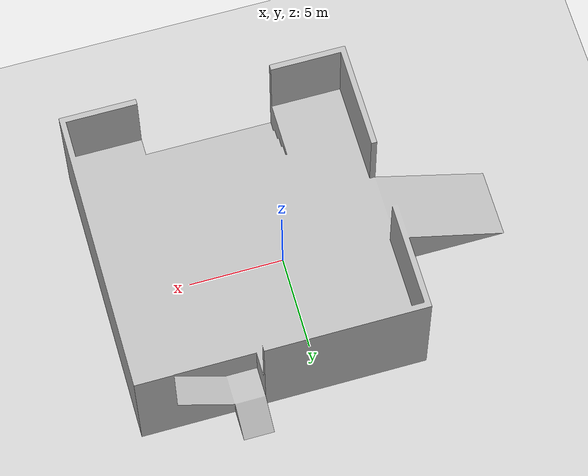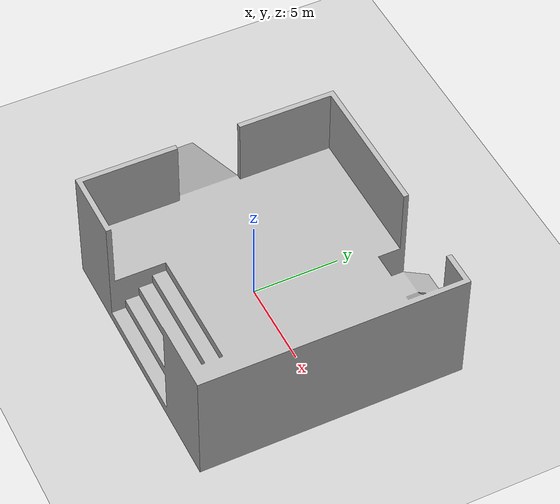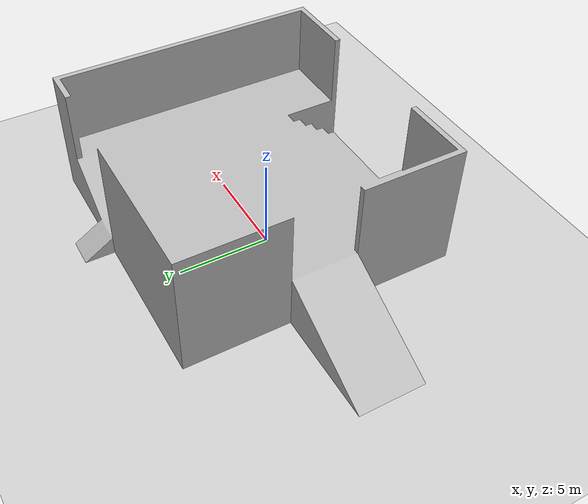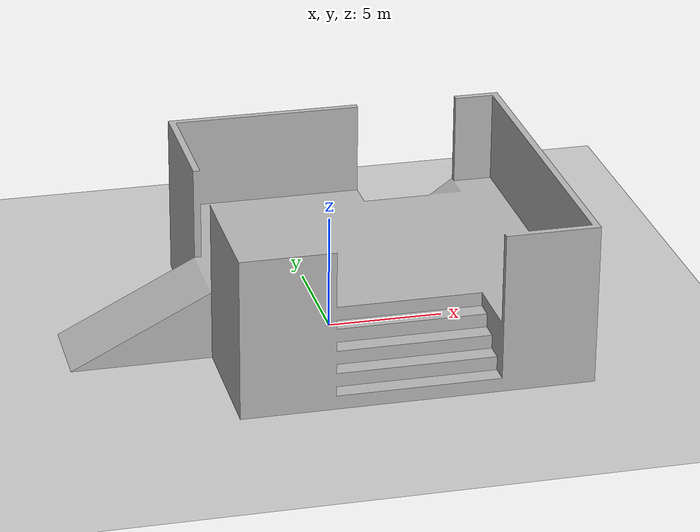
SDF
<?xml version="1.0" ?>
<sdf version="1.4">
  <!-- We use a custom world for the rrbot so that the camera angle is launched correctly -->

  <world name="default">

    <include>
      <uri>model://ground_plane</uri>
    </include>

    <!-- Global light source -->
    <include>
      <uri>model://sun</uri>
    </include>
     <model name="my_mesh">
      <pose>0 0 0  0 0 0</pose>
      <static>true</static>
      <link name="body">
        <visual name="visual">
          <geometry>
            <mesh>
	      <uri>file://world.dae</uri>
	      <scale>1000 1000 1000</scale>
	    </mesh>
          </geometry>
        </visual>
        <collision name="collision">
          <geometry>
            <mesh>
	      <uri>file://world.dae</uri>
	      <scale>1000 1000 1000</scale>
	    </mesh>
          </geometry>
        </collision>
      </link>
    </model>
    <!-- Focus camera on tall pendulum -->
    <gui fullscreen='0'>
      <camera name='user_camera'>
        <pose>4.927360 -4.376610 3.740080 0.000000 0.275643 2.356190</pose>
        <view_controller>orbit</view_controller>
      </camera>
    </gui>

  </world>
</sdf>
